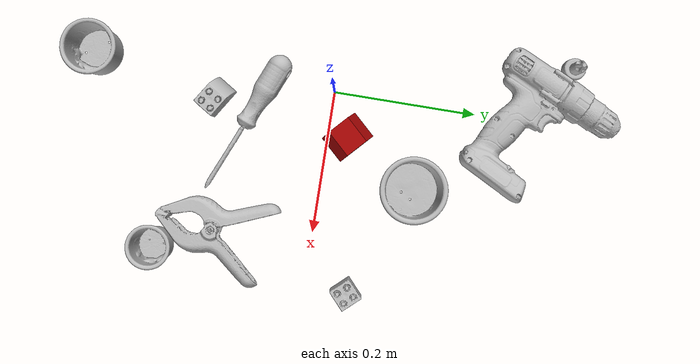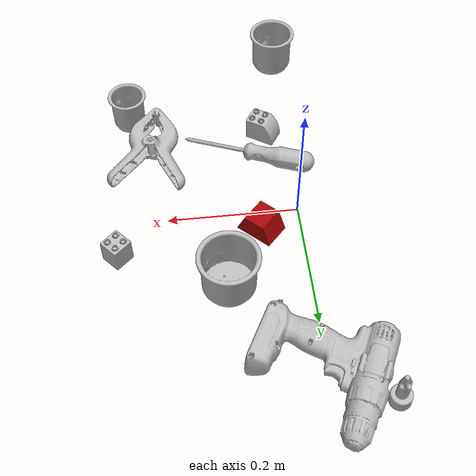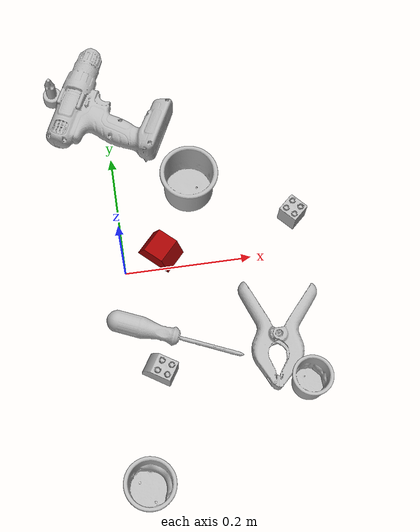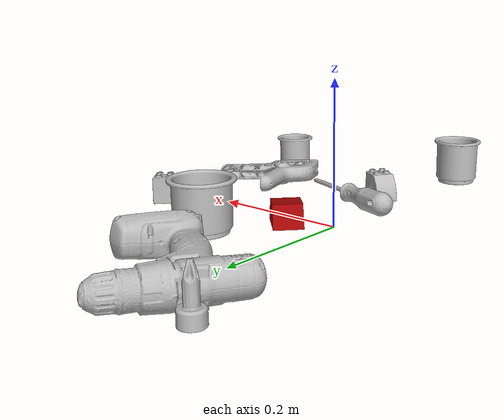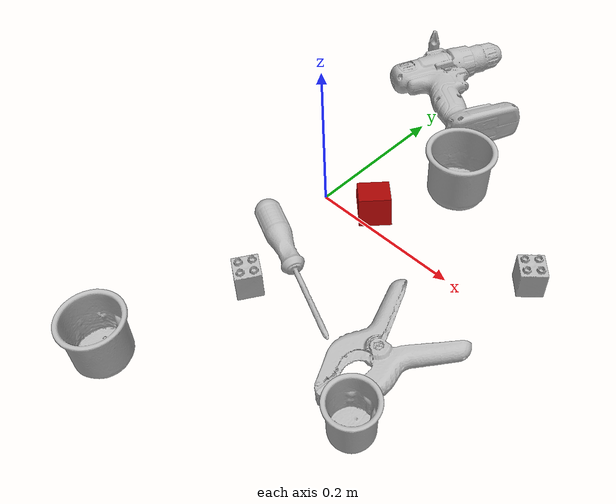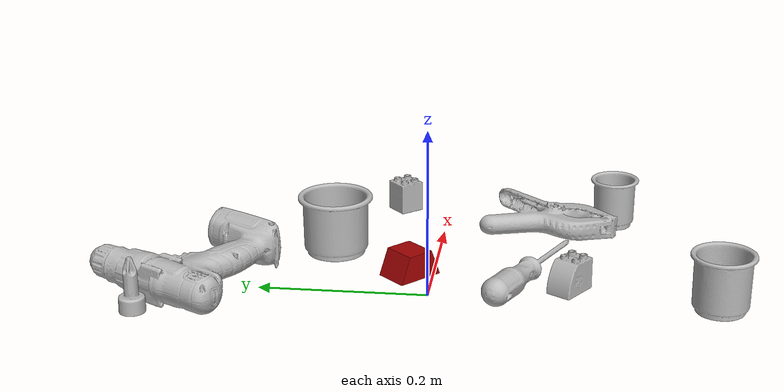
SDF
<sdf version="1.4">
  <world name="default">
    <light name="light1" type="point">
      <pose>0 0 1 0 0 0</pose>
      <diffuse>3 3 3 1</diffuse>
      <specular>3 3 3 1</specular>
    </light>
    <light name="light2" type="point">
      <pose>0 0.5 2 0 0 0</pose>
      <diffuse>1 1 1 1</diffuse>
      <specular>1 1 1 1</specular>
    </light>
    <light name="light3" type="point">
      <pose>0 0.5 2 0 0 0</pose>
      <diffuse>3 3 3 1</diffuse>
      <specular>3 3 3 1</specular>
    </light>
    <scene>
      <ambient>0.7 0.7 0.7</ambient>
    </scene>
    <model name="cup1">
      <link name="link_cup1">
        <collision name="default">
          <geometry>
            <mesh>
              <uri>model://b_cups/collision_meshes/collision.obj</uri>
              <scale>1.0 1.0 1.0</scale>
            </mesh>
          </geometry>
          <surface>
            <friction>
              <ode>
                <mu>0.5</mu>
                <mu2>0.5</mu2>
              </ode>
            </friction>
          <contact>
        <ode>
            <max_vel>0</max_vel>
            <min_depth>0.0001</min_depth>
            <kp>1e8</kp>
        </ode>
    </contact></surface>
        </collision>
        <visual name="default">
          <geometry>
            <mesh>
              <uri>model://b_cups/visual_meshes/visual.dae</uri>
              <scale>1.0 1.0 1.0</scale>
            </mesh>
          </geometry>
        </visual>
        <inertial>
          <mass>0.048613063991069794</mass>
          <pose>0.0005182003951631486 0.0018058597343042493 -0.0013381808530539274 0.11356326710502956 0.03872484102688303 -0.34569225342860055</pose>
          <inertia>
            <ixx>3.1820662e-05</ixx>
            <iyy>3.121653e-05</iyy>
            <izz>2.6776484e-05</izz>
            <ixy>0</ixy>
            <ixz>0</ixz>
            <iyz>0</iyz>
          </inertia>
        </inertial>
      </link>
      <pose>0.2504637837409973 -0.2145201414823532 0.0319972038269043 -0.007763540708052868 -0.003597189253442527 -0.8374482900876608</pose>
    </model>
    <model name="cup2">
      <link name="link_cup2">
        <collision name="default">
          <geometry>
            <mesh>
              <uri>model://e_cups/collision_meshes/collision.obj</uri>
              <scale>1.0 1.0 1.0</scale>
            </mesh>
          </geometry>
          <surface>
            <friction>
              <ode>
                <mu>0.5</mu>
                <mu2>0.5</mu2>
              </ode>
            </friction>
          <contact>
        <ode>
            <max_vel>0</max_vel>
            <min_depth>0.0001</min_depth>
            <kp>1e8</kp>
        </ode>
    </contact></surface>
        </collision>
        <visual name="default">
          <geometry>
            <mesh>
              <uri>model://e_cups/visual_meshes/visual.dae</uri>
              <scale>1.0 1.0 1.0</scale>
            </mesh>
          </geometry>
        </visual>
        <inertial>
          <mass>0.07592208683490753</mass>
          <pose>0.0011355738388374448 0.002879784908145666 -0.003882972290739417 0.695241209711482 0.0876783799590152 -0.5235234031188288</pose>
          <inertia>
            <ixx>6.6944274e-05</ixx>
            <iyy>6.996636e-05</iyy>
            <izz>6.400647e-05</izz>
            <ixy>0</ixy>
            <ixz>0</ixz>
            <iyz>0</iyz>
          </inertia>
        </inertial>
      </link>
      <pose>-0.003416541265323758 -0.3339615762233734 0.0355987586081028 0.0008441555430640266 -0.0010602263337164037 -0.6330282945784286</pose>
    </model>
    <model name="cup3">
      <link name="link_cup3">
        <collision name="default">
          <geometry>
            <mesh>
              <uri>model://h_cups/collision_meshes/collision.obj</uri>
              <scale>1.0 1.0 1.0</scale>
            </mesh>
          </geometry>
          <surface>
            <friction>
              <ode>
                <mu>0.5</mu>
                <mu2>0.5</mu2>
              </ode>
            </friction>
          <contact>
        <ode>
            <max_vel>0</max_vel>
            <min_depth>0.0001</min_depth>
            <kp>1e8</kp>
        </ode>
    </contact></surface>
        </collision>
        <visual name="default">
          <geometry>
            <mesh>
              <uri>model://h_cups/visual_meshes/visual.dae</uri>
              <scale>1.0 1.0 1.0</scale>
            </mesh>
          </geometry>
        </visual>
        <inertial>
          <mass>0.07054857164621353</mass>
          <pose>-2.7030857381760143e-05 0.0002301865170011297 -0.0018405391601845622 -0.024362378998248252 0.0654525662963329 0.12884761756284485</pose>
          <inertia>
            <ixx>9.1110225e-05</ixx>
            <iyy>9.002296e-05</iyy>
            <izz>9.5549614e-05</izz>
            <ixy>0</ixy>
            <ixz>0</ixz>
            <iyz>0</iyz>
          </inertia>
        </inertial>
      </link>
      <pose>0.11855722218751907 0.12698866426944733 0.03775801509618759 -5.121791736342604e-07 -3.982674690540636e-07 2.5231640111884595</pose>
    </model>
    <model name="toy1">
      <link name="link_toy1">
        <collision name="default">
          <geometry>
            <mesh>
              <uri>model://f_lego_duplo/collision_meshes/collision.obj</uri>
              <scale>1.0 1.0 1.0</scale>
            </mesh>
          </geometry>
          <surface>
            <friction>
              <ode>
                <mu>0.5</mu>
                <mu2>0.5</mu2>
              </ode>
            </friction>
          <contact>
        <ode>
            <max_vel>0</max_vel>
            <min_depth>0.0001</min_depth>
            <kp>1e8</kp>
        </ode>
    </contact></surface>
        </collision>
        <visual name="default">
          <geometry>
            <mesh>
              <uri>model://f_lego_duplo/visual_meshes/visual.dae</uri>
              <scale>1.0 1.0 1.0</scale>
            </mesh>
          </geometry>
        </visual>
        <inertial>
          <mass>0.027637142688035965</mass>
          <pose>2.3694037736277096e-05 0.0001339315203949809 0.0018837873358279467 0.029838580482088747 -0.014425059949813135 -0.6756637855802661</pose>
          <inertia>
            <ixx>5.8398805e-06</ixx>
            <iyy>5.8919077e-06</iyy>
            <izz>5.069264e-06</izz>
            <ixy>0</ixy>
            <ixz>0</ixz>
            <iyz>0</iyz>
          </inertia>
        </inertial>
      </link>
      <pose>0.2758418321609497 0.05952823907136917 0.02187100611627102 1.1637438075357197e-06 7.828271992047147e-07 2.307013418754503</pose>
    </model>
    <model name="toy2">
      <link name="link_toy2">
        <collision name="default">
          <geometry>
            <mesh>
              <uri>model://d_toy_airplane/collision_meshes/collision.obj</uri>
              <scale>1.0 1.0 1.0</scale>
            </mesh>
          </geometry>
          <surface>
            <friction>
              <ode>
                <mu>0.5</mu>
                <mu2>0.5</mu2>
              </ode>
            </friction>
          <contact>
        <ode>
            <max_vel>0</max_vel>
            <min_depth>0.0001</min_depth>
            <kp>1e8</kp>
        </ode>
    </contact></surface>
        </collision>
        <visual name="default">
          <geometry>
            <mesh>
              <uri>model://d_toy_airplane/visual_meshes/visual.dae</uri>
              <scale>1.0 1.0 1.0</scale>
            </mesh>
          </geometry>
        </visual>
        <inertial>
          <mass>0.017859498038887978</mass>
          <pose>9.410335042048246e-05 -5.809318827232346e-05 -0.011728094890713692 0.0002667298520076861 0.004679004392369758 0.5194091511239993</pose>
          <inertia>
            <ixx>5.35393e-06</ixx>
            <iyy>5.3579683e-06</iyy>
            <izz>1.6163864e-06</izz>
            <ixy>0</ixy>
            <ixz>0</ixz>
            <iyz>0</iyz>
          </inertia>
        </inertial>
      </link>
      <pose>-0.08392064273357391 0.3265770375728607 0.03333894535899162 0.00019659223499604136 -9.252669592203803e-05 -0.8654917693176458</pose>
    </model>
    <model name="toy3">
      <link name="link_toy3">
        <collision name="default">
          <geometry>
            <mesh>
              <uri>model://prism/collision_meshes/collision.obj</uri>
              <scale>0.5 0.5 0.5</scale>
            </mesh>
          </geometry>
          <surface>
            <friction>
              <ode>
                <mu>0.5</mu>
                <mu2>0.5</mu2>
              </ode>
            </friction>
          <contact>
        <ode>
            <max_vel>0</max_vel>
            <min_depth>0.0001</min_depth>
            <kp>1e8</kp>
        </ode>
    </contact></surface>
        </collision>
        <visual name="default">
          <geometry>
            <mesh>
              <uri>model://prism/visual_meshes/visual.dae</uri>
              <scale>0.5 0.5 0.5</scale>
            </mesh>
          </geometry>
        </visual>
        <inertial>
          <mass>0.04761093109846115</mass>
          <pose>-4.92679828312248e-05 -2.480786349678965e-07 -0.001693455153144896 0.0 0.006559181231804993 0.0</pose>
          <inertia>
            <ixx>1.074207e-05</ixx>
            <iyy>1.2981929e-05</iyy>
            <izz>1.590131e-05</izz>
            <ixy>0</ixy>
            <ixz>0</ixz>
            <iyz>0</iyz>
          </inertia>
        </inertial>
      </link>
      <pose>0.059709932655096054 0.028058907017111778 0.016085002571344376 3.651687842834992e-08 -4.816926848258424e-08 2.3902865488923766</pose>
    </model>
    <model name="toy4">
      <link name="link_toy4">
        <collision name="default">
          <geometry>
            <mesh>
              <uri>model://d_lego_duplo/collision_meshes/collision.obj</uri>
              <scale>1.0 1.0 1.0</scale>
            </mesh>
          </geometry>
          <surface>
            <friction>
              <ode>
                <mu>0.5</mu>
                <mu2>0.5</mu2>
              </ode>
            </friction>
          <contact>
        <ode>
            <max_vel>0</max_vel>
            <min_depth>0.0001</min_depth>
            <kp>1e8</kp>
        </ode>
    </contact></surface>
        </collision>
        <visual name="default">
          <geometry>
            <mesh>
              <uri>model://d_lego_duplo/visual_meshes/visual.dae</uri>
              <scale>1.0 1.0 1.0</scale>
            </mesh>
          </geometry>
        </visual>
        <inertial>
          <mass>0.06000049039721489</mass>
          <pose>0.0028305640444159508 0.0001636611996218562 0.000858980929479003 0.08010949527318252 -0.38355210287845315 0.0010297055105996263</pose>
          <inertia>
            <ixx>1.1615211e-05</ixx>
            <iyy>1.6485134e-05</iyy>
            <izz>1.5897598e-05</izz>
            <ixy>0</ixy>
            <ixz>0</ixz>
            <iyz>0</iyz>
          </inertia>
        </inertial>
      </link>
      <pose>0.03296952322125435 -0.16263972222805023 0.02173975110054016 -4.3378680604254565e-05 -3.677495220928218e-05 -0.5667266584991714</pose>
    </model>
    <model name="hardware1">
      <link name="link_hardware1">
        <collision name="default">
          <geometry>
            <mesh>
              <uri>model://phillips_screwdriver/collision_meshes/collision.obj</uri>
              <scale>1.0 1.0 1.0</scale>
            </mesh>
          </geometry>
          <surface>
            <friction>
              <ode>
                <mu>0.5</mu>
                <mu2>0.5</mu2>
              </ode>
            </friction>
          <contact>
        <ode>
            <max_vel>0</max_vel>
            <min_depth>0.0001</min_depth>
            <kp>1e8</kp>
        </ode>
    </contact></surface>
        </collision>
        <visual name="default">
          <geometry>
            <mesh>
              <uri>model://phillips_screwdriver/visual_meshes/visual.dae</uri>
              <scale>1.0 1.0 1.0</scale>
            </mesh>
          </geometry>
        </visual>
        <inertial>
          <mass>0.11704345047473907</mass>
          <pose>-0.04777182638645172 0.0010362302418798208 -0.0004555549821816385 -0.1571668982332543 0.0058509943133797405 -0.002156735283865719</pose>
          <inertia>
            <ixx>1.3751404e-05</ixx>
            <iyy>0.00017241857</iyy>
            <izz>0.0001725651</izz>
            <ixy>0</ixy>
            <ixz>0</ixz>
            <iyz>0</iyz>
          </inertia>
        </inertial>
      </link>
      <pose>0.05948048084974289 -0.11604717373847961 0.015409659594297409 0.06561876100832421 0.03756781812060307 -0.3999787151448044</pose>
    </model>
    <model name="hardware2">
      <link name="link_hardware2">
        <collision name="default">
          <geometry>
            <mesh>
              <uri>model://large_clamp/collision_meshes/collision.obj</uri>
              <scale>1.0 1.0 1.0</scale>
            </mesh>
          </geometry>
          <surface>
            <friction>
              <ode>
                <mu>0.5</mu>
                <mu2>0.5</mu2>
              </ode>
            </friction>
          <contact>
        <ode>
            <max_vel>0</max_vel>
            <min_depth>0.0001</min_depth>
            <kp>1e8</kp>
        </ode>
    </contact></surface>
        </collision>
        <visual name="default">
          <geometry>
            <mesh>
              <uri>model://large_clamp/visual_meshes/visual.dae</uri>
              <scale>1.0 1.0 1.0</scale>
            </mesh>
          </geometry>
        </visual>
        <inertial>
          <mass>0.18953841924667358</mass>
          <pose>0.00636935792863369 0.0003585682134144008 -0.00018398056272417307 -0.002133075536327147 0.009671586607470332 0.026633167384546762</pose>
          <inertia>
            <ixx>0.00016722476</ixx>
            <iyy>0.0003175689</iyy>
            <izz>0.00045940367</izz>
            <ixy>0</ixy>
            <ixz>0</ixz>
            <iyz>0</iyz>
          </inertia>
        </inertial>
      </link>
      <pose>0.21697111427783966 -0.1367897242307663 0.018465297296643257 0.019345120684255836 0.032747861750659794 -1.7562712870080428</pose>
    </model>
    <model name="hardware3">
      <link name="link_hardware3">
        <collision name="default">
          <geometry>
            <mesh>
              <uri>model://power_drill/collision_meshes/collision.obj</uri>
              <scale>1.0 1.0 1.0</scale>
            </mesh>
          </geometry>
          <surface>
            <friction>
              <ode>
                <mu>0.5</mu>
                <mu2>0.5</mu2>
              </ode>
            </friction>
          <contact>
        <ode>
            <max_vel>0</max_vel>
            <min_depth>0.0001</min_depth>
            <kp>1e8</kp>
        </ode>
    </contact></surface>
        </collision>
        <visual name="default">
          <geometry>
            <mesh>
              <uri>model://power_drill/visual_meshes/visual.dae</uri>
              <scale>1.0 1.0 1.0</scale>
            </mesh>
          </geometry>
        </visual>
        <inertial>
          <mass>0.5207164287567139</mass>
          <pose>-0.014780543744564056 0.014369428157806396 0.0012414171360433102 0.004609162650930739 0.004073022346756156 -0.183626968168983</pose>
          <inertia>
            <ixx>0.0021219437</ixx>
            <iyy>0.00083487434</iyy>
            <izz>0.002802402</izz>
            <ixy>0</ixy>
            <ixz>0</ixz>
            <iyz>0</iyz>
          </inertia>
        </inertial>
      </link>
      <pose>0.01536542922258377 0.282662034034729 0.027312446385622025 -0.030305992589590686 -0.04725282517904706 1.1098147829242226</pose>
    </model>
  <physics type="ode">
      <max_contacts>50</max_contacts>
      <ode>
        <solver>
          <type>quick</type>
          <iters>75</iters>
        </solver>
        <constraints>
          <contact_max_correcting_vel>0</contact_max_correcting_vel>
          <contact_surface_layer>0</contact_surface_layer>
        </constraints>
      </ode>
    </physics></world>
</sdf>
